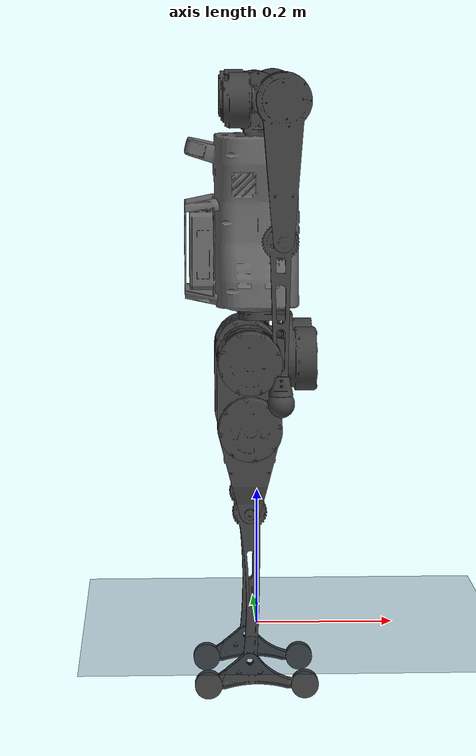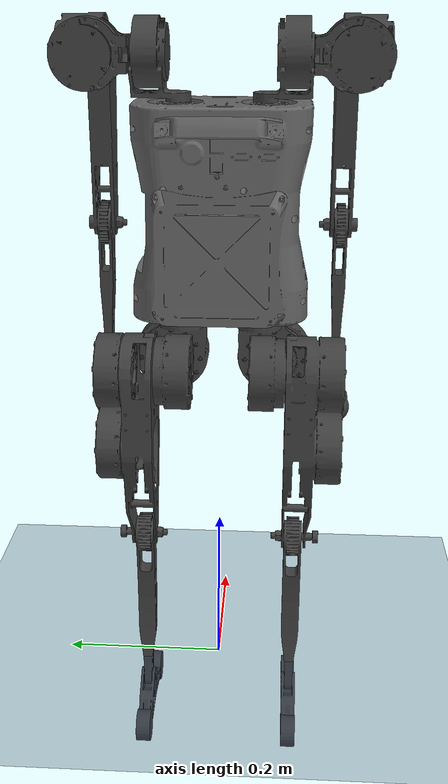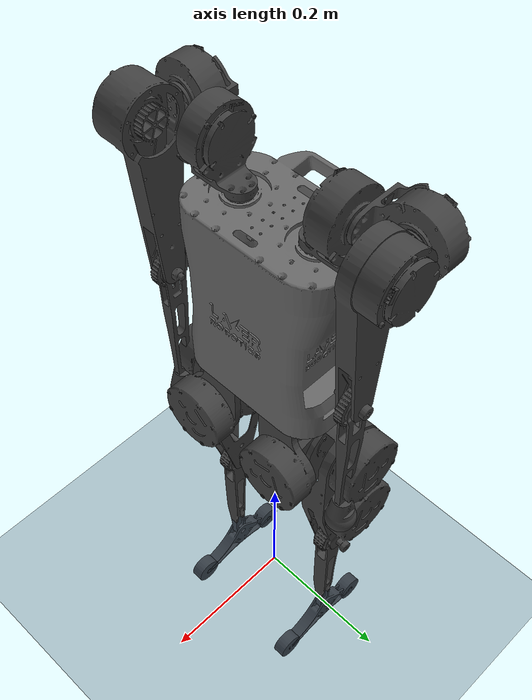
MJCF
<mujoco model="hector_v2">
  <compiler angle="radian"  meshdir="./meshes/"/>
  <option timestep='0.001' o_solref='-100000 -1000' >
		<flag override='enable' />
	</option>

  <default>
    <default class="a1_actuator">
      <general biastype="affine" gainprm="0.0 0 0 0 0 0 0 0 0 0" biasprm="0 0.0 0.0 0 0 0 0 0 0 0" forcerange="-33.5 33.5"/>
    </default>

    <default class="robstride_01_actuator">
      <general biastype="affine" gainprm="0.0 0 0 0 0 0 0 0 0 0" biasprm="0 0.0 0.0 0 0 0 0 0 0 0" forcerange="-17.0 17.0"/>
    </default>

    <default class="imu">
      <site type="box" size="0.01 0.008 0.0015" rgba="1 0 0 0" />
    </default>
    <default class="visual">
      <geom group="2" type="mesh" contype="0" conaffinity="0" density="0"/>
    </default>
    <default class="collision">
      <geom group="1" type="mesh" />
    </default>
  </default>

  <asset>
    <mesh name="torso" file="torso.stl"/>
    <mesh name="l_hip1" file="l_hip1.stl"/>
    <mesh name="l_hip2" file="l_hip2.stl"/>
    <mesh name="l_thigh" file="l_thigh.stl"/>
    <mesh name="calf" file="calf.stl"/>
    <mesh name="foot" file="foot_original.stl"/>
    <mesh name="r_hip1" file="r_hip1.stl"/>
    <mesh name="r_hip2" file="r_hip2.stl"/>
    <mesh name="r_thigh" file="r_thigh.stl"/>

    <mesh name="r_shoulder1" file="r_shoulder1.stl"/>
    <mesh name="r_shoulder2" file="r_shoulder2.stl"/>
    <mesh name="r_upper_arm" file="r_upper_arm.stl"/>

    <mesh name="lower_arm" file="lower_arm.stl"/>

    <mesh name="l_shoulder1" file="l_shoulder1.stl"/>
    <mesh name="l_shoulder2" file="l_shoulder2.stl"/>
    <mesh name="l_upper_arm" file="l_upper_arm.stl"/>

    <material name="black" rgba="0.25 0.25 0.25 1" />
    <material name="silver" rgba="0.75 0.75 0.75 1" />
    <material name="space_gray" rgba="0.4 0.4 0.4 1" />
    <material name="transparent" rgba="0 0 0 0" />

    <texture type="skybox" builtin="gradient" rgb1="0.3 0.5 0.7" rgb2="0 0 0" width="512" height="3072" />
    <texture type="2d" name="groundplane" builtin="checker" mark="edge" rgb1="0.2 0.3 0.4" rgb2="0.1 0.2 0.3" markrgb="0.8 0.8 0.8" width="300" height="300" />
    <material name="groundplane" texture="groundplane" texuniform="true" texrepeat="5 5" reflectance="0.5" />

  </asset>

  <visual>
		  <headlight diffuse="0.6 0.6 0.6" ambient="0.3 0.3 0.3" specular="0 0 0" />
		  <rgba haze="0.15 0.25 0.35 1" />
	    <global offheight="2160" offwidth="3840"/>
    	<quality offsamples="8"/>
	</visual>

  <worldbody>
    <light name="spotlight0" mode="targetbodycom" target="torso" pos="0 0 10" cutoff="60" />
		<light name="spotlight1" mode="targetbodycom" target="torso" pos="0.5 0 10" cutoff="60" />
      <geom name="floor" size="0 0 .125" type="plane" material="groundplane" conaffinity="15" condim="3" />
    <body name="torso" pos="0 0 0.6" >

      <freejoint name="root" />
      <site name="root" class="imu"/>

      <inertial pos="0.0 0.0 0.0" mass="4.98" fullinertia="0.048637  0.04267 0.023157 0.000154 0.000534 0.0" />
      <geom class="visual" mesh="torso" material="space_gray"/>
      <geom class="collision" mesh="torso" material="space_gray" />

      <body name="l_hip1" pos="0 0.047 -0.1265">
        <joint name="l_hip_yaw" pos="0 0 0" axis="0 0 1" limited="true" range="-0.785398 0.785398" actuatorfrcrange="-33.5 33.5" damping="0.1"/>

        <inertial pos="0.05147 0.01453 -0.06160"  mass="0.77833" diaginertia="0.00122 0.00111 0.00081" />
        <geom class="visual" mesh="l_hip1" material="black"/>
        <geom class="collision" mesh="l_hip1" material="black"/>

        <body name="l_hip2" pos="0.0465 0.015 -0.0705">

          <joint name="l_hip_roll" pos="0 0 0" axis="1 0 0" limited="true" range="-0.785398 0.785398" actuatorfrcrange="-33.5 33.5" damping="0.1"/>

          <inertial pos="-0.05690 -0.00009 0.00023"  mass="0.67724" diaginertia="0.00053 0.00087 0.00061" />
          <geom class="visual" mesh="l_hip2" material="black"/>
          <geom class="collision" mesh="l_hip2" material="black"/>

          <body name="l_thigh" pos="-0.06 0.018 0">

            <joint name="l_hip_pitch" pos="0 0 0" axis="0 1 0" limited="true" range="-3.14 3.14" actuatorfrcrange="-33.5 33.5" damping="0.1"/>

            <inertial pos="0 0.0495479 -0.0538811" quat="0.706819 -0.0201552 0.0201552 0.706819" mass="1.558" diaginertia="0.00641282 0.00621905 0.00163248"/>
            <geom class="visual" mesh="l_thigh" material="black"/>
            <geom class="collision" mesh="l_thigh" material="black"/>

            <body name="l_calf" pos="0 0.0142 -0.22">

              <joint name="l_knee" pos="0 0 0" axis="0 1 0" limited="true" range="-3.14 3.14" actuatorfrcrange="-67 67" damping="0.1"/>

              <inertial pos="0.00204 0 -0.077" quat="0.707107 0 0 0.707107" mass="0.146" diaginertia="0.00075 0.00074 2e-05"/>
              <geom class="visual" mesh="calf" material="black"/>
              <geom class="collision" mesh="calf" material="black"/>

              <body name="l_toe" pos="0 0 -0.22">

                <joint name="l_ankle" pos="0 0 0" axis="0 1 0" limited="true" range="-1.4 1.4" actuatorfrcrange="-33.5 33.5" damping="0.1"/>
                <inertial pos="0.00246 0.00003 -0.02248" mass="0.08440" diaginertia="0.00001 0.00011 0.00010" />
                <geom class="visual" mesh="foot" material="black"/>
                <geom class="collision" mesh="foot" material="black"/>

                  <body name="l_toe_front" pos="0.08 0 -0.035">
                    <joint name="l_front_wheel" pos="0 0 0" axis="0 1 0" limited="false" actuatorfrcrange="-17 17" damping="0.1"/>
                    <inertial pos="0.00001 0.00001 0.00001" mass="0.001" diaginertia="0.00001 0.00001 0.00001" />
                    <geom type="cylinder" fromto="0 -0.009 0   0 0.009 0" size="0.02" material="black" friction="1 1 1"/>
                  </body>

                  <body name="l_toe_back" pos="-0.06 0 -0.035">
                    <joint name="l_back_wheel" pos="0 0 0" axis="0 1 0" limited="false" actuatorfrcrange="-17 17" damping="0.1"/>
                    <inertial pos="0.00001 0.00001 0.00001" mass="0.001" diaginertia="0.00001 0.00001 0.00001" />
                    <geom type="cylinder" fromto="0 -0.009 0   0 0.009 0" size="0.02" material="black" friction="1 1 1"/>
                  </body>

                <site name="l_toe" class="imu"/>
              </body>
            </body>
          </body>
        </body>
      </body>

      <body name="r_hip1" pos="0 -0.047 -0.1265">

        <joint name="r_hip_yaw" pos="0 0 0" axis="0 0 1" limited="true" range="-0.785398 0.785398" actuatorfrcrange="-33.5 33.5" damping="0.1"/>
        <inertial pos="0.05147 -0.01453 -0.06160"  mass="0.77833" diaginertia="0.00122 0.00111 0.00081" />
        <geom class="visual" mesh="r_hip1" material="black"/>
        <geom class="collision" mesh="r_hip1" material="black" />

        <body name="r_hip2" pos="0.0465 -0.015 -0.0705">

          <joint name="r_hip_roll" pos="0 0 0" axis="1 0 0" limited="true" range="-0.785398 0.785398" actuatorfrcrange="-33.5 33.5" damping="0.1"/>
          <inertial pos="-0.05690 0.00009 0.00023"  mass="0.67724" diaginertia="0.00053 0.00087 0.00061" />
          <geom class="visual" mesh="r_hip2" material="black"/>
          <geom class="collision" mesh="r_hip2" material="black"/>

          <body name="r_thigh" pos="-0.06 -0.018 0">

            <joint name="r_hip_pitch" pos="0 0 0" axis="0 1 0" limited="true" range="-3.14 3.14" actuatorfrcrange="-33.5 33.5" damping="0.1"/>
            <inertial pos="0 -0.0495479 -0.0534307" quat="0.706808 0.0205429 -0.0205429 0.706808" mass="1.558" diaginertia="0.0064221 0.00622769 0.00163184"/>
            <geom class="visual" mesh="r_thigh" material="black"/>
            <geom class="collision" mesh="r_thigh" material="black"/>

            <body name="r_calf" pos="0 -0.0142 -0.22">

              <joint name="r_knee" pos="0 0 0" axis="0 1 0" limited="true" range="-3.14 3.14" actuatorfrcrange="-67 67" damping="0.1"/>
              <inertial pos="0.00204 0 -0.077" quat="0.707107 0 0 0.707107" mass="0.146" diaginertia="0.00075 0.00074 2e-05"/>
              <geom class="visual" mesh="calf" material="black"/>
              <geom class="collision" mesh="calf" material="black"/>

              <body name="r_toe" pos="0 0 -0.22">
                <joint name="r_ankle" pos="0 0 0" axis="0 1 0" limited="true" range="-1.4 1.4" actuatorfrcrange="-33.5 33.5" damping="0.1"/>
                <inertial pos="0.00246 -0.00003 -0.02248" mass="0.08440" diaginertia="0.00001 0.00011 0.00010" />
                <geom class="visual" mesh="foot" material="black"/>
                <geom class="collision" mesh="foot" material="black"/>

                <body name="r_toe_front" pos="0.08 0 -0.035">
                  <joint name="r_front_wheel" pos="0 0 0" axis="0 1 0" limited="false" actuatorfrcrange="-17 17" damping="0.1"/>
                  <inertial pos="0.00001 0.00001 0.00001" mass="0.001" diaginertia="0.00001 0.00001 0.00001" />
                  <geom type="cylinder" fromto="0 -0.009 0   0 0.009 0" size="0.02" material="black" friction="1 1 1"/>
                </body>

                <body name="r_toe_back" pos="-0.06 0 -0.035">
                  <joint name="r_back_wheel" pos="0 0 0" axis="0 1 0" limited="false" actuatorfrcrange="-17 17" damping="0.1"/>
                  <inertial pos="0.00001 0.00001 0.00001" mass="0.001" diaginertia="0.00001 0.00001 0.00001" />
                  <geom type="cylinder" fromto="0 -0.009 0   0 0.009 0" size="0.02" material="black" friction="1 1 1"/>
                </body>

                <site name="r_toe" class="imu"/>
              </body>
            </body>
          </body>
        </body>
      </body>

      <body name="l_shoudler1" pos="0 0.053 0.124">

        <joint name="l_shoulder_yaw" pos="0 0 0" axis="0 0 1" limited="true" range="-1.4 1.4" actuatorfrcrange="-17 17" damping="0.1"/>
        <inertial pos="0.00071 0.02838 0.04835" quat="0.707107 0 0 0.707107" mass="0.4356" diaginertia="0.00043 0.00035 0.00027"/>
        <geom class="visual" mesh="l_shoulder1" material="black"/>
        <geom class="collision" mesh="l_shoulder1" material="black" />

        <body name="l_shoulder2" pos="0 0.049 0.053">

          <joint name="l_shoulder_pitch" pos="0 0 0" axis="0 1 0" limited="true" range="-3.14 1.5708" actuatorfrcrange="-17 17" damping="0.1"/>
          <inertial pos="-0.0294 0.04541 0.00089" quat="0.705607 0.705607 0.0460358 0.0460358" mass="0.432" diaginertia="0.000422621 0.00033 0.000267379"/>
          <geom class="visual" mesh="l_shoulder2" material="black"/>
          <geom class="collision" mesh="l_shoulder2" material="black"/>

          <body name="l_upper_arm" pos="-0.011 0.0457 0">

            <joint name="l_shoulder_roll" pos="0 0 0" axis="-1 0 0" limited="true" range="-1.4 1.4" actuatorfrcrange="-17 17" damping="0.1"/>
            <inertial pos="0.04492 0.01006 -0.03218" quat="0.67582 -0.0441467 0.0483102 0.734156" mass="0.66484" diaginertia="0.00329956 0.00317918 0.000441259"/>
            <geom class="visual" mesh="l_upper_arm" material="black"/>
            <geom class="collision" mesh="l_upper_arm" material="black" />

            <body name="l_lower_arm" pos="0.041 -0.007 -0.2">
              <joint name="l_elbow" pos="0 0 0" axis="0 1 0" limited="true" range="-3 3" actuatorfrcrange="-24.09 24.09" damping="0.1"/>
              <inertial pos="0 8e-05 -0.11722" quat="0.707107 0 0 0.707107" mass="0.1578" diaginertia="0.0013 0.00129 2e-05"/>
              <geom class="visual" mesh="lower_arm" material="black"/>
              <geom class="collision" mesh="lower_arm" material="black"/>

                <site name="l_hand" pos="0 0 -0.22" quat="0 1 0 0"/>
            </body>
          </body>
        </body>
      </body>

      <body name="r_shoulder1" pos="0 -0.053 0.124">

        <joint name="r_shoulder_yaw" pos="0 0 0" axis="0 0 1" limited="true" range="-1.4 1.4" actuatorfrcrange="-17 17" damping="0.1"/>
        <inertial pos="0.00071 -0.02838 0.04835" quat="0.707107 0 0 0.707107" mass="0.4356" diaginertia="0.00043 0.00035 0.00027"/>

        <geom class="visual" mesh="r_shoulder1" material="black"/>
        <geom class="collision" mesh="r_shoulder1" material="black"/>

        <body name="r_shoulder2" pos="0 -0.049 0.053">

          <joint name="r_shoulder_pitch" pos="0 0 0" axis="0 1 0" limited="true" range="-3.14 1.5708" actuatorfrcrange="-17 17" damping="0.1"/>
          <inertial pos="-0.0294 -0.04541 0.00089" quat="0.705607 0.705607 -0.0460358 -0.0460358" mass="0.432" diaginertia="0.000422621 0.00033 0.000267379"/>
          <geom class="visual" mesh="r_shoulder2" material="black"/>
          <geom class="collision" mesh="r_shoulder2" material="black" />

          <body name="r_upper_arm" pos="-0.011 -0.0457 0">

            <joint name="r_shoulder_roll" pos="0 0 0" axis="-1 0 0" limited="true" range="-1.4 1.4" actuatorfrcrange="-17 17" damping="0.1"/>
            <inertial pos="0.04492 -0.01006 -0.03218" quat="0.734156 0.0483102 -0.0441467 0.67582" mass="0.66484" diaginertia="0.00329956 0.00317918 0.000441259"/>
            <geom class="visual" mesh="r_upper_arm" material="black"/>
            <geom class="collision" mesh="r_upper_arm" material="black"/>

            <body name="r_lower_arm" pos="0.041 0.007 -0.2">
              <inertial pos="0 8e-05 -0.11722" quat="0.707107 0 0 0.707107" mass="0.1578" diaginertia="0.0013 0.00129 2e-05"/>
              <joint name="r_elbow" pos="0 0 0" axis="0 1 0" limited="true" range="-3 3" actuatorfrcrange="-24.09 24.09" damping="0.1"/>
              <geom class="visual" mesh="lower_arm" material="black"/>
              <geom class="collision" mesh="lower_arm" material="black" />

              <site name="r_hand" pos="0 0 -0.22" quat="0 1 0 0"/>
            </body>

          </body>
        </body>
      </body>

  </body>
  </worldbody>

  <actuator>
    <!-- < for hybrid control in code > -->
		<general class="a1_actuator" name="l_hip_yaw" joint="l_hip_yaw"  />
		<general class="a1_actuator" name="l_hip_roll" joint="l_hip_roll"  />
		<general class="a1_actuator" name="l_hip_pitch" joint="l_hip_pitch" />
		<general class="a1_actuator" name="l_knee" joint="l_knee" forcerange="-67.0 67.0"   />
		<general class="a1_actuator" name="l_ankle" joint="l_ankle"  />
    <general class="robstride_01_actuator" name="l_front_wheel" joint="l_front_wheel"  />
    <general class="robstride_01_actuator" name="l_back_wheel" joint="l_back_wheel"  />

		<general class="a1_actuator" name="r_hip_yaw" joint="r_hip_yaw"  />
		<general class="a1_actuator" name="r_hip_roll" joint="r_hip_roll" />
		<general class="a1_actuator" name="r_hip_pitch" joint="r_hip_pitch"  />
		<general class="a1_actuator" name="r_knee" joint="r_knee" forcerange="-67.0 67.0"   />
		<general class="a1_actuator" name="r_ankle" joint="r_ankle" />
    <general class="robstride_01_actuator" name="r_front_wheel" joint="r_front_wheel"  />
    <general class="robstride_01_actuator" name="r_back_wheel" joint="r_back_wheel"  />

    <general class="robstride_01_actuator" name="l_shoulder_yaw" joint="l_shoulder_yaw"  />
    <general class="robstride_01_actuator" name="l_shoulder_pitch" joint="l_shoulder_pitch" />
    <general class="robstride_01_actuator" name="l_shoulder_roll" joint="l_shoulder_roll" />
    <general class="robstride_01_actuator" name="l_elbow" joint="l_elbow" forcerange="-24.09 24.09"   />

    <general class="robstride_01_actuator" name="r_shoulder_yaw" joint="r_shoulder_yaw"  />
    <general class="robstride_01_actuator" name="r_shoulder_pitch" joint="r_shoulder_pitch" />
    <general class="robstride_01_actuator" name="r_shoulder_roll" joint="r_shoulder_roll" />
    <general class="robstride_01_actuator" name="r_elbow" joint="r_elbow" forcerange="-24.09 24.09"   />

	</actuator>

  <sensor>
     <framequat name="torso_quat" objtype="site" objname="root"/>
     <framepos name="torso_pos" objtype="site" objname="root"/>
     <framelinvel name="torso_linvel" objtype="site" objname="root"/>

		<accelerometer name="torso_acc" site="root"/>
		<velocimeter name="torso_vel" site="root"/>
		<gyro name="torso_gyr" site="root"/>

    <framepos name="l_foot_pos" objtype="site" objname="l_toe"/>
    <framepos name="r_foot_pos" objtype="site" objname="r_toe"/>

		<!-- motor encoders -->
		<actuatorpos name="l_hip_yaw_pos" actuator="l_hip_yaw"/>
		<actuatorpos name="l_hip_roll_pos" actuator="l_hip_roll"/>
		<actuatorpos name="l_hip_pitch_pos" actuator="l_hip_pitch"/>
		<actuatorpos name="l_knee_pos" actuator="l_knee"/>
		<actuatorpos name="l_ankle_pos" actuator="l_ankle"/>
    <actuatorpos name="l_front_wheel_pos" actuator="l_front_wheel"/>
    <actuatorpos name="l_back_wheel_pos" actuator="l_back_wheel"/>

		<actuatorpos name="r_hip_yaw_pos" actuator="r_hip_yaw"/>
		<actuatorpos name="r_hip_roll_pos" actuator="r_hip_roll"/>
		<actuatorpos name="r_hip_pitch_pos" actuator="r_hip_pitch"/>
		<actuatorpos name="r_knee_pos" actuator="r_knee"/>
		<actuatorpos name="r_ankle_pos" actuator="r_ankle"/>
    <actuatorpos name="r_front_wheel_pos" actuator="r_front_wheel"/>
    <actuatorpos name="r_back_wheel_pos" actuator="r_back_wheel"/>

    <actuatorpos name="l_shoulder_yaw_pos" actuator="l_shoulder_yaw"/>
    <actuatorpos name="l_shoulder_pitch_pos" actuator="l_shoulder_pitch"/>
    <actuatorpos name="l_shoulder_roll_pos" actuator="l_shoulder_roll"/>
    <actuatorpos name="l_elbow_pos" actuator="l_elbow"/>

    <actuatorpos name="r_shoulder_yaw_pos" actuator="r_shoulder_yaw"/>
    <actuatorpos name="r_shoulder_pitch_pos" actuator="r_shoulder_pitch"/>
    <actuatorpos name="r_shoulder_roll_pos" actuator="r_shoulder_roll"/>
    <actuatorpos name="r_elbow_pos" actuator="r_elbow"/>

		<actuatorvel name="l_hip_yaw_vel" actuator="l_hip_yaw"/>
		<actuatorvel name="l_hip_roll_vel" actuator="l_hip_roll"/>
		<actuatorvel name="l_hip_pitch_vel" actuator="l_hip_pitch"/>
		<actuatorvel name="l_knee_vel" actuator="l_knee"/>
		<actuatorvel name="l_ankle_vel" actuator="l_ankle"/>
    <actuatorvel name="l_front_wheel_vel" actuator="l_front_wheel"/>
    <actuatorvel name="l_back_wheel_vel" actuator="l_back_wheel"/>

		<actuatorvel name="r_hip_yaw_vel" actuator="r_hip_yaw"/>
		<actuatorvel name="r_hip_roll_vel" actuator="r_hip_roll"/>
		<actuatorvel name="r_hip_pitch_vel" actuator="r_hip_pitch"/>
		<actuatorvel name="r_knee_vel" actuator="r_knee"/>
		<actuatorvel name="r_ankle_vel" actuator="r_ankle"/>
    <actuatorvel name="r_front_wheel_vel" actuator="r_front_wheel"/>
    <actuatorvel name="r_back_wheel_vel" actuator="r_back_wheel"/>

    <actuatorvel name="l_shoulder_yaw_vel" actuator="l_shoulder_yaw"/>
    <actuatorvel name="l_shoulder_pitch_vel" actuator="l_shoulder_pitch"/>
    <actuatorvel name="l_shoulder_roll_vel" actuator="l_shoulder_roll"/>
    <actuatorvel name="l_elbow_vel" actuator="l_elbow"/>

    <actuatorvel name="r_shoulder_yaw_vel" actuator="r_shoulder_yaw"/>
    <actuatorvel name="r_shoulder_pitch_vel" actuator="r_shoulder_pitch"/>
    <actuatorvel name="r_shoulder_roll_vel" actuator="r_shoulder_roll"/>
    <actuatorvel name="r_elbow_vel" actuator="r_elbow"/>

		<actuatorfrc name="l_hip_yaw_frc" actuator="l_hip_yaw"/>
		<actuatorfrc name="l_hip_roll_frc" actuator="l_hip_roll"/>
		<actuatorfrc name="l_hip_pitch_frc" actuator="l_hip_pitch"/>
		<actuatorfrc name="l_knee_frc" actuator="l_knee"/>
		<actuatorfrc name="l_ankle_frc" actuator="l_ankle"/>
    <actuatorfrc name="l_front_wheel_frc" actuator="l_front_wheel"/>
    <actuatorfrc name="l_back_wheel_frc" actuator="l_back_wheel"/>

		<actuatorfrc name="r_hip_yaw_frc" actuator="r_hip_yaw"/>
		<actuatorfrc name="r_hip_roll_frc" actuator="r_hip_roll"/>
		<actuatorfrc name="r_hip_pitch_frc" actuator="r_hip_pitch"/>
		<actuatorfrc name="r_knee_frc" actuator="r_knee"/>
		<actuatorfrc name="r_ankle_frc" actuator="r_ankle"/>
    <actuatorfrc name="r_front_wheel_frc" actuator="r_front_wheel"/>
    <actuatorfrc name="r_back_wheel_frc" actuator="r_back_wheel"/>

    <actuatorfrc name="l_shoulder_yaw_frc" actuator="l_shoulder_yaw"/>
    <actuatorfrc name="l_shoulder_pitch_frc" actuator="l_shoulder_pitch"/>
    <actuatorfrc name="l_shoulder_roll_frc" actuator="l_shoulder_roll"/>
    <actuatorfrc name="l_elbow_frc" actuator="l_elbow"/>

    <actuatorfrc name="r_shoulder_yaw_frc" actuator="r_shoulder_yaw"/>
    <actuatorfrc name="r_shoulder_pitch_frc" actuator="r_shoulder_pitch"/>
    <actuatorfrc name="r_shoulder_roll_frc" actuator="r_shoulder_roll"/>
    <actuatorfrc name="r_elbow_frc" actuator="r_elbow"/>

  </sensor>

	<equality>
		<weld name="world_root" active="true" body1="torso" relpose="0 0 -0.6 1 0 0 0"/>
	</equality>

	<contact>
    <exclude body1="torso" body2="l_hip1" />
    <exclude body1="torso" body2="r_hip1" />
		<exclude body1="l_thigh" body2="l_hip1" />
		<exclude body1="r_thigh" body2="r_hip1" />
  		<exclude body1="l_thigh" body2="l_hip2" />
		<exclude body1="r_thigh" body2="r_hip2" />
	</contact>

    <keyframe>
    <key name="home" qpos="
                              0.00 0.00 0.55
                              1.00 0.00 0.000   0.00
                              0.00 0.00 0.785  -1.57 0.785 0.0 0.0
                              0.00 0.00 0.785  -1.57 0.785 0.0 0.0
                              0.00 0.785 0.000  -1.57
                              0.00 0.785 0.000  -1.57
                          "
      />
  </keyframe>

</mujoco>
